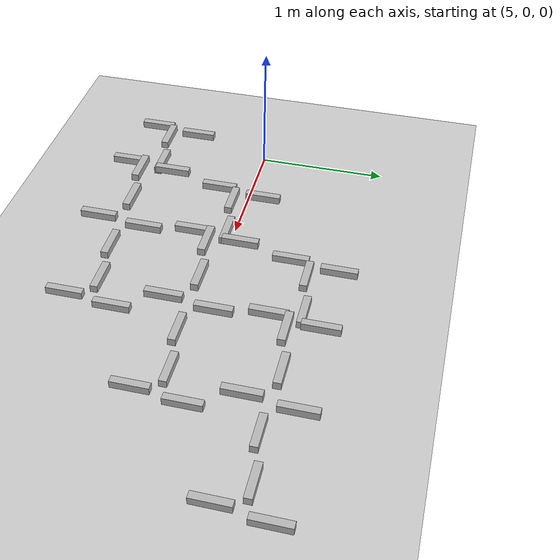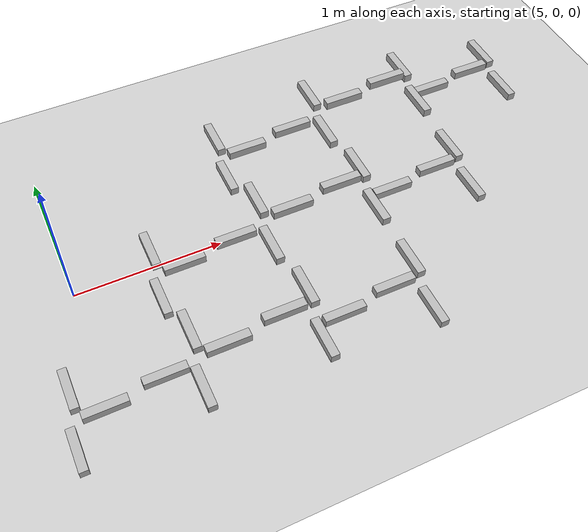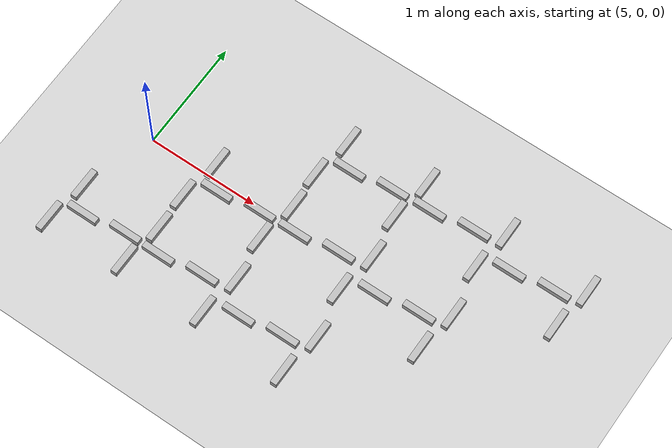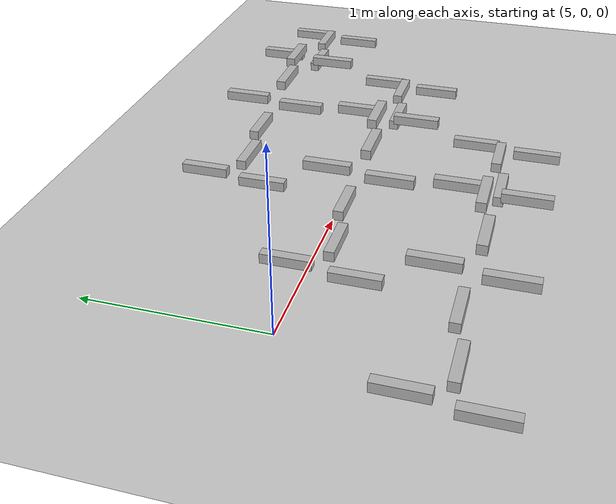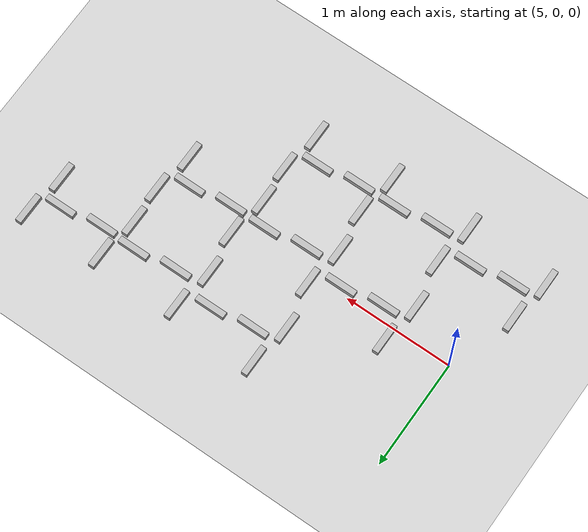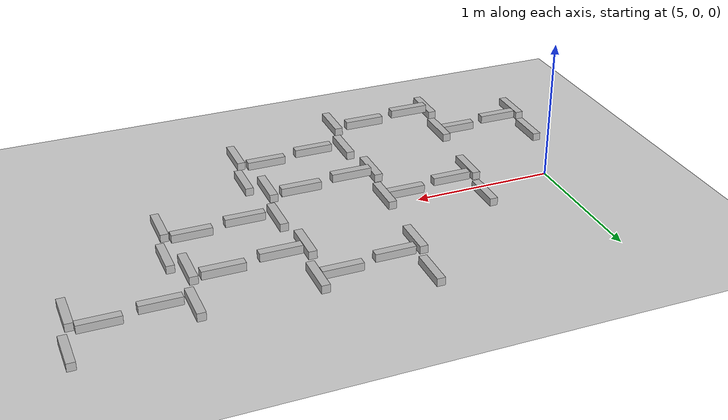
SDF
<sdf version="1.5">
 <world name="trials_task_2">
  <model name="ground_plane">
   <static>1</static>
   <link name="link">
    <collision name="collision">
     <geometry><plane><normal>0 0 1</normal><size>100 100</size></plane></geometry>
     <surface><friction><ode><mu>100</mu><mu2>50</mu2></ode></friction></surface>
    </collision>
    <visual name="visual">
     <cast_shadows>0</cast_shadows>
     <geometry><plane><normal>0 0 1</normal><size>100 100</size></plane></geometry>
     <material>
      <script><uri>file://media/materials/scripts/gazebo.material</uri><name>Gazebo/Grey</name></script>
     </material>
    </visual>
    <velocity_decay><linear>0</linear><angular>0</angular></velocity_decay>
   </link>
  </model>
  <model name="angle_block_base_1">
   <pose>4.38 -1.212 -0.142 0 -0 0</pose>
   <link name="block_0_0">
    <pose>0.19 0.19 0.092075 0 -0 0</pose>
    <inertial>
     <pose>0.16152 0 0.0745178 0 -0 1.5708</pose>
     <mass>20</mass>
     <inertia>
      <ixx>0.010815</ixx>
      <ixy>0</ixy>
      <iyy>0.136074</iyy>
      <ixz>0</ixz>
      <iyz>0</iyz>
      <izz>0.136074</izz>
     </inertia>
    </inertial>
    <visual name="visual">
     <pose>0.16152 0 0.0745178 0 -0 1.5708</pose>
     <geometry><box><size>0.28 0.0569606 0.0569606</size></box></geometry>
    </visual>
    <collision name="block_collision">
     <pose>0.16152 0 0.0745178 0 -0 1.5708</pose>
     <geometry><box><size>0.28 0.056961 0.056961</size></box></geometry>
     <surface>
      <contact><ode><max_vel>0.1</max_vel><min_depth>0.001</min_depth></ode></contact>
      <friction><ode><mu>1</mu><mu2>1</mu2></ode></friction>
     </surface>
    </collision>
    <velocity_decay><linear>0</linear><angular>0</angular></velocity_decay>
   </link>
   <link name="block_0_1">
    <pose>0.57 0.57 0.092075 0 -0 0</pose>
    <inertial>
     <pose>-0.16152 0 0.0745178 0 -0 1.5708</pose>
     <mass>20</mass>
     <inertia>
      <ixx>0.010815</ixx>
      <ixy>0</ixy>
      <iyy>0.136074</iyy>
      <ixz>0</ixz>
      <iyz>0</iyz>
      <izz>0.136074</izz>
     </inertia>
    </inertial>
    <visual name="visual">
     <pose>-0.16152 0 0.0745178 0 -0 1.5708</pose>
     <geometry><box><size>0.28 0.0569606 0.0569606</size></box></geometry>
    </visual>
    <collision name="block_collision">
     <pose>-0.16152 0 0.0745178 0 -0 1.5708</pose>
     <geometry><box><size>0.28 0.056961 0.056961</size></box></geometry>
     <surface>
      <contact><ode><max_vel>0.1</max_vel><min_depth>0.001</min_depth></ode></contact>
      <friction><ode><mu>1</mu><mu2>1</mu2></ode></friction>
     </surface>
    </collision>
    <velocity_decay><linear>0</linear><angular>0</angular></velocity_decay>
   </link>
   <link name="block_0_2">
    <pose>0.95 0.95 0.092075 0 -0 0</pose>
    <inertial>
     <pose>0.16152 0 0.0745178 0 -0 1.5708</pose>
     <mass>20</mass>
     <inertia>
      <ixx>0.010815</ixx>
      <ixy>0</ixy>
      <iyy>0.136074</iyy>
      <ixz>0</ixz>
      <iyz>0</iyz>
      <izz>0.136074</izz>
     </inertia>
    </inertial>
    <visual name="visual">
     <pose>0.16152 0 0.0745178 0 -0 1.5708</pose>
     <geometry><box><size>0.28 0.0569606 0.0569606</size></box></geometry>
    </visual>
    <collision name="block_collision">
     <pose>0.16152 0 0.0745178 0 -0 1.5708</pose>
     <geometry><box><size>0.28 0.056961 0.056961</size></box></geometry>
     <surface>
      <contact><ode><max_vel>0.1</max_vel><min_depth>0.001</min_depth></ode></contact>
      <friction><ode><mu>1</mu><mu2>1</mu2></ode></friction>
     </surface>
    </collision>
    <velocity_decay><linear>0</linear><angular>0</angular></velocity_decay>
   </link>
   <link name="block_0_3">
    <pose>1.33 1.33 0.092075 0 -0 0</pose>
    <inertial>
     <pose>-0.16152 0 0.0745178 0 -0 1.5708</pose>
     <mass>20</mass>
     <inertia>
      <ixx>0.010815</ixx>
      <ixy>0</ixy>
      <iyy>0.136074</iyy>
      <ixz>0</ixz>
      <iyz>0</iyz>
      <izz>0.136074</izz>
     </inertia>
    </inertial>
    <visual name="visual">
     <pose>-0.16152 0 0.0745178 0 -0 1.5708</pose>
     <geometry><box><size>0.28 0.0569606 0.0569606</size></box></geometry>
    </visual>
    <collision name="block_collision">
     <pose>-0.16152 0 0.0745178 0 -0 1.5708</pose>
     <geometry><box><size>0.28 0.056961 0.056961</size></box></geometry>
     <surface>
      <contact><ode><max_vel>0.1</max_vel><min_depth>0.001</min_depth></ode></contact>
      <friction><ode><mu>1</mu><mu2>1</mu2></ode></friction>
     </surface>
    </collision>
    <velocity_decay><linear>0</linear><angular>0</angular></velocity_decay>
   </link>
   <link name="block_0_4">
    <pose>1.71 1.71 0.092075 0 -0 0</pose>
    <inertial>
     <pose>0.16152 0 0.0745178 0 -0 1.5708</pose>
     <mass>20</mass>
     <inertia>
      <ixx>0.010815</ixx>
      <ixy>0</ixy>
      <iyy>0.136074</iyy>
      <ixz>0</ixz>
      <iyz>0</iyz>
      <izz>0.136074</izz>
     </inertia>
    </inertial>
    <visual name="visual">
     <pose>0.16152 0 0.0745178 0 -0 1.5708</pose>
     <geometry><box><size>0.28 0.0569606 0.0569606</size></box></geometry>
    </visual>
    <collision name="block_collision">
     <pose>0.16152 0 0.0745178 0 -0 1.5708</pose>
     <geometry><box><size>0.28 0.056961 0.056961</size></box></geometry>
     <surface>
      <contact><ode><max_vel>0.1</max_vel><min_depth>0.001</min_depth></ode></contact>
      <friction><ode><mu>1</mu><mu2>1</mu2></ode></friction>
     </surface>
    </collision>
    <velocity_decay><linear>0</linear><angular>0</angular></velocity_decay>
   </link>
   <link name="block_0_5">
    <pose>2.09 2.09 0.092075 0 -0 0</pose>
    <inertial>
     <pose>-0.16152 0 0.0745178 0 -0 1.5708</pose>
     <mass>20</mass>
     <inertia>
      <ixx>0.010815</ixx>
      <ixy>0</ixy>
      <iyy>0.136074</iyy>
      <ixz>0</ixz>
      <iyz>0</iyz>
      <izz>0.136074</izz>
     </inertia>
    </inertial>
    <visual name="visual">
     <pose>-0.16152 0 0.0745178 0 -0 1.5708</pose>
     <geometry><box><size>0.28 0.0569606 0.0569606</size></box></geometry>
    </visual>
    <collision name="block_collision">
     <pose>-0.16152 0 0.0745178 0 -0 1.5708</pose>
     <geometry><box><size>0.28 0.056961 0.056961</size></box></geometry>
     <surface>
      <contact><ode><max_vel>0.1</max_vel><min_depth>0.001</min_depth></ode></contact>
      <friction><ode><mu>1</mu><mu2>1</mu2></ode></friction>
     </surface>
    </collision>
    <velocity_decay><linear>0</linear><angular>0</angular></velocity_decay>
   </link>
   <link name="block_1_0">
    <pose>0.57 0.19 0.138112 0 -0 0</pose>
    <inertial>
     <pose>0 0.16152 0.0745178 0 -0 0</pose>
     <mass>20</mass>
     <inertia>
      <ixx>0.010815</ixx>
      <ixy>0</ixy>
      <iyy>0.136074</iyy>
      <ixz>0</ixz>
      <iyz>0</iyz>
      <izz>0.136074</izz>
     </inertia>
    </inertial>
    <visual name="visual">
     <pose>0 0.16152 0.0745178 0 -0 0</pose>
     <geometry><box><size>0.28 0.0569606 0.0569606</size></box></geometry>
    </visual>
    <collision name="block_collision">
     <pose>0 0.16152 0.0745178 0 -0 0</pose>
     <geometry><box><size>0.28 0.056961 0.056961</size></box></geometry>
     <surface>
      <contact><ode><max_vel>0.1</max_vel><min_depth>0.001</min_depth></ode></contact>
      <friction><ode><mu>1</mu><mu2>1</mu2></ode></friction>
     </surface>
    </collision>
    <velocity_decay><linear>0</linear><angular>0</angular></velocity_decay>
   </link>
   <link name="block_1_1">
    <pose>0.95 0.57 0.138112 0 -0 0</pose>
    <inertial>
     <pose>0 -0.16152 0.0745178 0 -0 0</pose>
     <mass>20</mass>
     <inertia>
      <ixx>0.010815</ixx>
      <ixy>0</ixy>
      <iyy>0.136074</iyy>
      <ixz>0</ixz>
      <iyz>0</iyz>
      <izz>0.136074</izz>
     </inertia>
    </inertial>
    <visual name="visual">
     <pose>0 -0.16152 0.0745178 0 -0 0</pose>
     <geometry><box><size>0.28 0.0569606 0.0569606</size></box></geometry>
    </visual>
    <collision name="block_collision">
     <pose>0 -0.16152 0.0745178 0 -0 0</pose>
     <geometry><box><size>0.28 0.056961 0.056961</size></box></geometry>
     <surface>
      <contact><ode><max_vel>0.1</max_vel><min_depth>0.001</min_depth></ode></contact>
      <friction><ode><mu>1</mu><mu2>1</mu2></ode></friction>
     </surface>
    </collision>
    <velocity_decay><linear>0</linear><angular>0</angular></velocity_decay>
   </link>
   <link name="block_1_2">
    <pose>1.33 0.95 0.138112 0 -0 0</pose>
    <inertial>
     <pose>0 0.16152 0.0745178 0 -0 0</pose>
     <mass>20</mass>
     <inertia>
      <ixx>0.010815</ixx>
      <ixy>0</ixy>
      <iyy>0.136074</iyy>
      <ixz>0</ixz>
      <iyz>0</iyz>
      <izz>0.136074</izz>
     </inertia>
    </inertial>
    <visual name="visual">
     <pose>0 0.16152 0.0745178 0 -0 0</pose>
     <geometry><box><size>0.28 0.0569606 0.0569606</size></box></geometry>
    </visual>
    <collision name="block_collision">
     <pose>0 0.16152 0.0745178 0 -0 0</pose>
     <geometry><box><size>0.28 0.056961 0.056961</size></box></geometry>
     <surface>
      <contact><ode><max_vel>0.1</max_vel><min_depth>0.001</min_depth></ode></contact>
      <friction><ode><mu>1</mu><mu2>1</mu2></ode></friction>
     </surface>
    </collision>
    <velocity_decay><linear>0</linear><angular>0</angular></velocity_decay>
   </link>
   <link name="block_1_3">
    <pose>1.71 1.33 0.138112 0 -0 0</pose>
    <inertial>
     <pose>0 -0.16152 0.0745178 0 -0 0</pose>
     <mass>20</mass>
     <inertia>
      <ixx>0.010815</ixx>
      <ixy>0</ixy>
      <iyy>0.136074</iyy>
      <ixz>0</ixz>
      <iyz>0</iyz>
      <izz>0.136074</izz>
     </inertia>
    </inertial>
    <visual name="visual">
     <pose>0 -0.16152 0.0745178 0 -0 0</pose>
     <geometry><box><size>0.28 0.0569606 0.0569606</size></box></geometry>
    </visual>
    <collision name="block_collision">
     <pose>0 -0.16152 0.0745178 0 -0 0</pose>
     <geometry><box><size>0.28 0.056961 0.056961</size></box></geometry>
     <surface>
      <contact><ode><max_vel>0.1</max_vel><min_depth>0.001</min_depth></ode></contact>
      <friction><ode><mu>1</mu><mu2>1</mu2></ode></friction>
     </surface>
    </collision>
    <velocity_decay><linear>0</linear><angular>0</angular></velocity_decay>
   </link>
   <link name="block_1_4">
    <pose>2.09 1.71 0.138112 0 -0 0</pose>
    <inertial>
     <pose>0 0.16152 0.0745178 0 -0 0</pose>
     <mass>20</mass>
     <inertia>
      <ixx>0.010815</ixx>
      <ixy>0</ixy>
      <iyy>0.136074</iyy>
      <ixz>0</ixz>
      <iyz>0</iyz>
      <izz>0.136074</izz>
     </inertia>
    </inertial>
    <visual name="visual">
     <pose>0 0.16152 0.0745178 0 -0 0</pose>
     <geometry><box><size>0.28 0.0569606 0.0569606</size></box></geometry>
    </visual>
    <collision name="block_collision">
     <pose>0 0.16152 0.0745178 0 -0 0</pose>
     <geometry><box><size>0.28 0.056961 0.056961</size></box></geometry>
     <surface>
      <contact><ode><max_vel>0.1</max_vel><min_depth>0.001</min_depth></ode></contact>
      <friction><ode><mu>1</mu><mu2>1</mu2></ode></friction>
     </surface>
    </collision>
    <velocity_decay><linear>0</linear><angular>0</angular></velocity_decay>
   </link>
   <link name="block_1_5">
    <pose>2.47 2.09 0.138112 0 -0 0</pose>
    <inertial>
     <pose>0 -0.16152 0.0745178 0 -0 0</pose>
     <mass>20</mass>
     <inertia>
      <ixx>0.010815</ixx>
      <ixy>0</ixy>
      <iyy>0.136074</iyy>
      <ixz>0</ixz>
      <iyz>0</iyz>
      <izz>0.136074</izz>
     </inertia>
    </inertial>
    <visual name="visual">
     <pose>0 -0.16152 0.0745178 0 -0 0</pose>
     <geometry><box><size>0.28 0.0569606 0.0569606</size></box></geometry>
    </visual>
    <collision name="block_collision">
     <pose>0 -0.16152 0.0745178 0 -0 0</pose>
     <geometry><box><size>0.28 0.056961 0.056961</size></box></geometry>
     <surface>
      <contact><ode><max_vel>0.1</max_vel><min_depth>0.001</min_depth></ode></contact>
      <friction><ode><mu>1</mu><mu2>1</mu2></ode></friction>
     </surface>
    </collision>
    <velocity_decay><linear>0</linear><angular>0</angular></velocity_decay>
   </link>
   <link name="block_2_0">
    <pose>0.95 0.19 0.230188 0 -0 0</pose>
    <inertial>
     <pose>0.16152 0 0.0745178 0 -0 1.5708</pose>
     <mass>20</mass>
     <inertia>
      <ixx>0.010815</ixx>
      <ixy>0</ixy>
      <iyy>0.136074</iyy>
      <ixz>0</ixz>
      <iyz>0</iyz>
      <izz>0.136074</izz>
     </inertia>
    </inertial>
    <visual name="visual">
     <pose>0.16152 0 0.0745178 0 -0 1.5708</pose>
     <geometry><box><size>0.28 0.0569606 0.0569606</size></box></geometry>
    </visual>
    <collision name="block_collision">
     <pose>0.16152 0 0.0745178 0 -0 1.5708</pose>
     <geometry><box><size>0.28 0.056961 0.056961</size></box></geometry>
     <surface>
      <contact><ode><max_vel>0.1</max_vel><min_depth>0.001</min_depth></ode></contact>
      <friction><ode><mu>1</mu><mu2>1</mu2></ode></friction>
     </surface>
    </collision>
    <velocity_decay><linear>0</linear><angular>0</angular></velocity_decay>
   </link>
   <link name="block_2_1">
    <pose>1.33 0.57 0.230188 0 -0 0</pose>
    <inertial>
     <pose>-0.16152 0 0.0745178 0 -0 1.5708</pose>
     <mass>20</mass>
     <inertia>
      <ixx>0.010815</ixx>
      <ixy>0</ixy>
      <iyy>0.136074</iyy>
      <ixz>0</ixz>
      <iyz>0</iyz>
      <izz>0.136074</izz>
     </inertia>
    </inertial>
    <visual name="visual">
     <pose>-0.16152 0 0.0745178 0 -0 1.5708</pose>
     <geometry><box><size>0.28 0.0569606 0.0569606</size></box></geometry>
    </visual>
    <collision name="block_collision">
     <pose>-0.16152 0 0.0745178 0 -0 1.5708</pose>
     <geometry><box><size>0.28 0.056961 0.056961</size></box></geometry>
     <surface>
      <contact><ode><max_vel>0.1</max_vel><min_depth>0.001</min_depth></ode></contact>
      <friction><ode><mu>1</mu><mu2>1</mu2></ode></friction>
     </surface>
    </collision>
    <velocity_decay><linear>0</linear><angular>0</angular></velocity_decay>
   </link>
   <link name="block_2_2">
    <pose>1.71 0.95 0.230188 0 -0 0</pose>
    <inertial>
     <pose>0.16152 0 0.0745178 0 -0 1.5708</pose>
     <mass>20</mass>
     <inertia>
      <ixx>0.010815</ixx>
      <ixy>0</ixy>
      <iyy>0.136074</iyy>
      <ixz>0</ixz>
      <iyz>0</iyz>
      <izz>0.136074</izz>
     </inertia>
    </inertial>
    <visual name="visual">
     <pose>0.16152 0 0.0745178 0 -0 1.5708</pose>
     <geometry><box><size>0.28 0.0569606 0.0569606</size></box></geometry>
    </visual>
    <collision name="block_collision">
     <pose>0.16152 0 0.0745178 0 -0 1.5708</pose>
     <geometry><box><size>0.28 0.056961 0.056961</size></box></geometry>
     <surface>
      <contact><ode><max_vel>0.1</max_vel><min_depth>0.001</min_depth></ode></contact>
      <friction><ode><mu>1</mu><mu2>1</mu2></ode></friction>
     </surface>
    </collision>
    <velocity_decay><linear>0</linear><angular>0</angular></velocity_decay>
   </link>
   <link name="block_2_3">
    <pose>2.09 1.33 0.230188 0 -0 0</pose>
    <inertial>
     <pose>-0.16152 0 0.0745178 0 -0 1.5708</pose>
     <mass>20</mass>
     <inertia>
      <ixx>0.010815</ixx>
      <ixy>0</ixy>
      <iyy>0.136074</iyy>
      <ixz>0</ixz>
      <iyz>0</iyz>
      <izz>0.136074</izz>
     </inertia>
    </inertial>
    <visual name="visual">
     <pose>-0.16152 0 0.0745178 0 -0 1.5708</pose>
     <geometry><box><size>0.28 0.0569606 0.0569606</size></box></geometry>
    </visual>
    <collision name="block_collision">
     <pose>-0.16152 0 0.0745178 0 -0 1.5708</pose>
     <geometry><box><size>0.28 0.056961 0.056961</size></box></geometry>
     <surface>
      <contact><ode><max_vel>0.1</max_vel><min_depth>0.001</min_depth></ode></contact>
      <friction><ode><mu>1</mu><mu2>1</mu2></ode></friction>
     </surface>
    </collision>
    <velocity_decay><linear>0</linear><angular>0</angular></velocity_decay>
   </link>
   <link name="block_2_4">
    <pose>2.47 1.71 0.230188 0 -0 0</pose>
    <inertial>
     <pose>0.16152 0 0.0745178 0 -0 1.5708</pose>
     <mass>20</mass>
     <inertia>
      <ixx>0.010815</ixx>
      <ixy>0</ixy>
      <iyy>0.136074</iyy>
      <ixz>0</ixz>
      <iyz>0</iyz>
      <izz>0.136074</izz>
     </inertia>
    </inertial>
    <visual name="visual">
     <pose>0.16152 0 0.0745178 0 -0 1.5708</pose>
     <geometry><box><size>0.28 0.0569606 0.0569606</size></box></geometry>
    </visual>
    <collision name="block_collision">
     <pose>0.16152 0 0.0745178 0 -0 1.5708</pose>
     <geometry><box><size>0.28 0.056961 0.056961</size></box></geometry>
     <surface>
      <contact><ode><max_vel>0.1</max_vel><min_depth>0.001</min_depth></ode></contact>
      <friction><ode><mu>1</mu><mu2>1</mu2></ode></friction>
     </surface>
    </collision>
    <velocity_decay><linear>0</linear><angular>0</angular></velocity_decay>
   </link>
   <link name="block_2_5">
    <pose>2.85 2.09 0.230188 0 -0 0</pose>
    <inertial>
     <pose>-0.16152 0 0.0745178 0 -0 1.5708</pose>
     <mass>20</mass>
     <inertia>
      <ixx>0.010815</ixx>
      <ixy>0</ixy>
      <iyy>0.136074</iyy>
      <ixz>0</ixz>
      <iyz>0</iyz>
      <izz>0.136074</izz>
     </inertia>
    </inertial>
    <visual name="visual">
     <pose>-0.16152 0 0.0745178 0 -0 1.5708</pose>
     <geometry><box><size>0.28 0.0569606 0.0569606</size></box></geometry>
    </visual>
    <collision name="block_collision">
     <pose>-0.16152 0 0.0745178 0 -0 1.5708</pose>
     <geometry><box><size>0.28 0.056961 0.056961</size></box></geometry>
     <surface>
      <contact><ode><max_vel>0.1</max_vel><min_depth>0.001</min_depth></ode></contact>
      <friction><ode><mu>1</mu><mu2>1</mu2></ode></friction>
     </surface>
    </collision>
    <velocity_decay><linear>0</linear><angular>0</angular></velocity_decay>
   </link>
   <link name="block_3_0">
    <pose>1.33 0.19 0.322263 0 -0 0</pose>
    <inertial>
     <pose>0 0.16152 0.0745178 0 -0 0</pose>
     <mass>20</mass>
     <inertia>
      <ixx>0.010815</ixx>
      <ixy>0</ixy>
      <iyy>0.136074</iyy>
      <ixz>0</ixz>
      <iyz>0</iyz>
      <izz>0.136074</izz>
     </inertia>
    </inertial>
    <visual name="visual">
     <pose>0 0.16152 0.0745178 0 -0 0</pose>
     <geometry><box><size>0.28 0.0569606 0.0569606</size></box></geometry>
    </visual>
    <collision name="block_collision">
     <pose>0 0.16152 0.0745178 0 -0 0</pose>
     <geometry><box><size>0.28 0.056961 0.056961</size></box></geometry>
     <surface>
      <contact><ode><max_vel>0.1</max_vel><min_depth>0.001</min_depth></ode></contact>
      <friction><ode><mu>1</mu><mu2>1</mu2></ode></friction>
     </surface>
    </collision>
    <velocity_decay><linear>0</linear><angular>0</angular></velocity_decay>
   </link>
   <link name="block_3_1">
    <pose>1.71 0.57 0.322263 0 -0 0</pose>
    <inertial>
     <pose>0 -0.16152 0.0745178 0 -0 0</pose>
     <mass>20</mass>
     <inertia>
      <ixx>0.010815</ixx>
      <ixy>0</ixy>
      <iyy>0.136074</iyy>
      <ixz>0</ixz>
      <iyz>0</iyz>
      <izz>0.136074</izz>
     </inertia>
    </inertial>
    <visual name="visual">
     <pose>0 -0.16152 0.0745178 0 -0 0</pose>
     <geometry><box><size>0.28 0.0569606 0.0569606</size></box></geometry>
    </visual>
    <collision name="block_collision">
     <pose>0 -0.16152 0.0745178 0 -0 0</pose>
     <geometry><box><size>0.28 0.056961 0.056961</size></box></geometry>
     <surface>
      <contact><ode><max_vel>0.1</max_vel><min_depth>0.001</min_depth></ode></contact>
      <friction><ode><mu>1</mu><mu2>1</mu2></ode></friction>
     </surface>
    </collision>
    <velocity_decay><linear>0</linear><angular>0</angular></velocity_decay>
   </link>
   <link name="block_3_2">
    <pose>2.09 0.95 0.322263 0 -0 0</pose>
    <inertial>
     <pose>0 0.16152 0.0745178 0 -0 0</pose>
     <mass>20</mass>
     <inertia>
      <ixx>0.010815</ixx>
      <ixy>0</ixy>
      <iyy>0.136074</iyy>
      <ixz>0</ixz>
      <iyz>0</iyz>
      <izz>0.136074</izz>
     </inertia>
    </inertial>
    <visual name="visual">
     <pose>0 0.16152 0.0745178 0 -0 0</pose>
     <geometry><box><size>0.28 0.0569606 0.0569606</size></box></geometry>
    </visual>
    <collision name="block_collision">
     <pose>0 0.16152 0.0745178 0 -0 0</pose>
     <geometry><box><size>0.28 0.056961 0.056961</size></box></geometry>
     <surface>
      <contact><ode><max_vel>0.1</max_vel><min_depth>0.001</min_depth></ode></contact>
      <friction><ode><mu>1</mu><mu2>1</mu2></ode></friction>
     </surface>
    </collision>
    <velocity_decay><linear>0</linear><angular>0</angular></velocity_decay>
   </link>
   <link name="block_3_3">
    <pose>2.47 1.33 0.322263 0 -0 0</pose>
    <inertial>
     <pose>0 -0.16152 0.0745178 0 -0 0</pose>
     <mass>20</mass>
     <inertia>
      <ixx>0.010815</ixx>
      <ixy>0</ixy>
      <iyy>0.136074</iyy>
      <ixz>0</ixz>
      <iyz>0</iyz>
      <izz>0.136074</izz>
     </inertia>
    </inertial>
    <visual name="visual">
     <pose>0 -0.16152 0.0745178 0 -0 0</pose>
     <geometry><box><size>0.28 0.0569606 0.0569606</size></box></geometry>
    </visual>
    <collision name="block_collision">
     <pose>0 -0.16152 0.0745178 0 -0 0</pose>
     <geometry><box><size>0.28 0.056961 0.056961</size></box></geometry>
     <surface>
      <contact><ode><max_vel>0.1</max_vel><min_depth>0.001</min_depth></ode></contact>
      <friction><ode><mu>1</mu><mu2>1</mu2></ode></friction>
     </surface>
    </collision>
    <velocity_decay><linear>0</linear><angular>0</angular></velocity_decay>
   </link>
   <link name="block_3_4">
    <pose>2.85 1.71 0.322263 0 -0 0</pose>
    <inertial>
     <pose>0 0.16152 0.0745178 0 -0 0</pose>
     <mass>20</mass>
     <inertia>
      <ixx>0.010815</ixx>
      <ixy>0</ixy>
      <iyy>0.136074</iyy>
      <ixz>0</ixz>
      <iyz>0</iyz>
      <izz>0.136074</izz>
     </inertia>
    </inertial>
    <visual name="visual">
     <pose>0 0.16152 0.0745178 0 -0 0</pose>
     <geometry><box><size>0.28 0.0569606 0.0569606</size></box></geometry>
    </visual>
    <collision name="block_collision">
     <pose>0 0.16152 0.0745178 0 -0 0</pose>
     <geometry><box><size>0.28 0.056961 0.056961</size></box></geometry>
     <surface>
      <contact><ode><max_vel>0.1</max_vel><min_depth>0.001</min_depth></ode></contact>
      <friction><ode><mu>1</mu><mu2>1</mu2></ode></friction>
     </surface>
    </collision>
    <velocity_decay><linear>0</linear><angular>0</angular></velocity_decay>
   </link>
   <link name="block_3_5">
    <pose>3.23 2.09 0.322263 0 -0 0</pose>
    <inertial>
     <pose>0 -0.16152 0.0745178 0 -0 0</pose>
     <mass>20</mass>
     <inertia>
      <ixx>0.010815</ixx>
      <ixy>0</ixy>
      <iyy>0.136074</iyy>
      <ixz>0</ixz>
      <iyz>0</iyz>
      <izz>0.136074</izz>
     </inertia>
    </inertial>
    <visual name="visual">
     <pose>0 -0.16152 0.0745178 0 -0 0</pose>
     <geometry><box><size>0.28 0.0569606 0.0569606</size></box></geometry>
    </visual>
    <collision name="block_collision">
     <pose>0 -0.16152 0.0745178 0 -0 0</pose>
     <geometry><box><size>0.28 0.056961 0.056961</size></box></geometry>
     <surface>
      <contact><ode><max_vel>0.1</max_vel><min_depth>0.001</min_depth></ode></contact>
      <friction><ode><mu>1</mu><mu2>1</mu2></ode></friction>
     </surface>
    </collision>
    <velocity_decay><linear>0</linear><angular>0</angular></velocity_decay>
   </link>
   <link name="block_4_0">
    <pose>1.71 0.19 0.230188 0 -0 0</pose>
    <inertial>
     <pose>0.16152 0 0.0745178 0 -0 1.5708</pose>
     <mass>20</mass>
     <inertia>
      <ixx>0.010815</ixx>
      <ixy>0</ixy>
      <iyy>0.136074</iyy>
      <ixz>0</ixz>
      <iyz>0</iyz>
      <izz>0.136074</izz>
     </inertia>
    </inertial>
    <visual name="visual">
     <pose>0.16152 0 0.0745178 0 -0 1.5708</pose>
     <geometry><box><size>0.28 0.0569606 0.0569606</size></box></geometry>
    </visual>
    <collision name="block_collision">
     <pose>0.16152 0 0.0745178 0 -0 1.5708</pose>
     <geometry><box><size>0.28 0.056961 0.056961</size></box></geometry>
     <surface>
      <contact><ode><max_vel>0.1</max_vel><min_depth>0.001</min_depth></ode></contact>
      <friction><ode><mu>1</mu><mu2>1</mu2></ode></friction>
     </surface>
    </collision>
    <velocity_decay><linear>0</linear><angular>0</angular></velocity_decay>
   </link>
   <link name="block_4_1">
    <pose>2.09 0.57 0.230188 0 -0 0</pose>
    <inertial>
     <pose>-0.16152 0 0.0745178 0 -0 1.5708</pose>
     <mass>20</mass>
     <inertia>
      <ixx>0.010815</ixx>
      <ixy>0</ixy>
      <iyy>0.136074</iyy>
      <ixz>0</ixz>
      <iyz>0</iyz>
      <izz>0.136074</izz>
     </inertia>
    </inertial>
    <visual name="visual">
     <pose>-0.16152 0 0.0745178 0 -0 1.5708</pose>
     <geometry><box><size>0.28 0.0569606 0.0569606</size></box></geometry>
    </visual>
    <collision name="block_collision">
     <pose>-0.16152 0 0.0745178 0 -0 1.5708</pose>
     <geometry><box><size>0.28 0.056961 0.056961</size></box></geometry>
     <surface>
      <contact><ode><max_vel>0.1</max_vel><min_depth>0.001</min_depth></ode></contact>
      <friction><ode><mu>1</mu><mu2>1</mu2></ode></friction>
     </surface>
    </collision>
    <velocity_decay><linear>0</linear><angular>0</angular></velocity_decay>
   </link>
   <link name="block_4_2">
    <pose>2.47 0.95 0.230188 0 -0 0</pose>
    <inertial>
     <pose>0.16152 0 0.0745178 0 -0 1.5708</pose>
     <mass>20</mass>
     <inertia>
      <ixx>0.010815</ixx>
      <ixy>0</ixy>
      <iyy>0.136074</iyy>
      <ixz>0</ixz>
      <iyz>0</iyz>
      <izz>0.136074</izz>
     </inertia>
    </inertial>
    <visual name="visual">
     <pose>0.16152 0 0.0745178 0 -0 1.5708</pose>
     <geometry><box><size>0.28 0.0569606 0.0569606</size></box></geometry>
    </visual>
    <collision name="block_collision">
     <pose>0.16152 0 0.0745178 0 -0 1.5708</pose>
     <geometry><box><size>0.28 0.056961 0.056961</size></box></geometry>
     <surface>
      <contact><ode><max_vel>0.1</max_vel><min_depth>0.001</min_depth></ode></contact>
      <friction><ode><mu>1</mu><mu2>1</mu2></ode></friction>
     </surface>
    </collision>
    <velocity_decay><linear>0</linear><angular>0</angular></velocity_decay>
   </link>
   <link name="block_4_3">
    <pose>2.85 1.33 0.230188 0 -0 0</pose>
    <inertial>
     <pose>-0.16152 0 0.0745178 0 -0 1.5708</pose>
     <mass>20</mass>
     <inertia>
      <ixx>0.010815</ixx>
      <ixy>0</ixy>
      <iyy>0.136074</iyy>
      <ixz>0</ixz>
      <iyz>0</iyz>
      <izz>0.136074</izz>
     </inertia>
    </inertial>
    <visual name="visual">
     <pose>-0.16152 0 0.0745178 0 -0 1.5708</pose>
     <geometry><box><size>0.28 0.0569606 0.0569606</size></box></geometry>
    </visual>
    <collision name="block_collision">
     <pose>-0.16152 0 0.0745178 0 -0 1.5708</pose>
     <geometry><box><size>0.28 0.056961 0.056961</size></box></geometry>
     <surface>
      <contact><ode><max_vel>0.1</max_vel><min_depth>0.001</min_depth></ode></contact>
      <friction><ode><mu>1</mu><mu2>1</mu2></ode></friction>
     </surface>
    </collision>
    <velocity_decay><linear>0</linear><angular>0</angular></velocity_decay>
   </link>
   <link name="block_4_4">
    <pose>3.23 1.71 0.230188 0 -0 0</pose>
    <inertial>
     <pose>0.16152 0 0.0745178 0 -0 1.5708</pose>
     <mass>20</mass>
     <inertia>
      <ixx>0.010815</ixx>
      <ixy>0</ixy>
      <iyy>0.136074</iyy>
      <ixz>0</ixz>
      <iyz>0</iyz>
      <izz>0.136074</izz>
     </inertia>
    </inertial>
    <visual name="visual">
     <pose>0.16152 0 0.0745178 0 -0 1.5708</pose>
     <geometry><box><size>0.28 0.0569606 0.0569606</size></box></geometry>
    </visual>
    <collision name="block_collision">
     <pose>0.16152 0 0.0745178 0 -0 1.5708</pose>
     <geometry><box><size>0.28 0.056961 0.056961</size></box></geometry>
     <surface>
      <contact><ode><max_vel>0.1</max_vel><min_depth>0.001</min_depth></ode></contact>
      <friction><ode><mu>1</mu><mu2>1</mu2></ode></friction>
     </surface>
    </collision>
    <velocity_decay><linear>0</linear><angular>0</angular></velocity_decay>
   </link>
   <link name="block_4_5">
    <pose>3.61 2.09 0.230188 0 -0 0</pose>
    <inertial>
     <pose>-0.16152 0 0.0745178 0 -0 1.5708</pose>
     <mass>20</mass>
     <inertia>
      <ixx>0.010815</ixx>
      <ixy>0</ixy>
      <iyy>0.136074</iyy>
      <ixz>0</ixz>
      <iyz>0</iyz>
      <izz>0.136074</izz>
     </inertia>
    </inertial>
    <visual name="visual">
     <pose>-0.16152 0 0.0745178 0 -0 1.5708</pose>
     <geometry><box><size>0.28 0.0569606 0.0569606</size></box></geometry>
    </visual>
    <collision name="block_collision">
     <pose>-0.16152 0 0.0745178 0 -0 1.5708</pose>
     <geometry><box><size>0.28 0.056961 0.056961</size></box></geometry>
     <surface>
      <contact><ode><max_vel>0.1</max_vel><min_depth>0.001</min_depth></ode></contact>
      <friction><ode><mu>1</mu><mu2>1</mu2></ode></friction>
     </surface>
    </collision>
    <velocity_decay><linear>0</linear><angular>0</angular></velocity_decay>
   </link>
   <link name="block_5_0">
    <pose>2.09 0.19 0.138112 0 -0 0</pose>
    <inertial>
     <pose>0 0.16152 0.0745178 0 -0 0</pose>
     <mass>20</mass>
     <inertia>
      <ixx>0.010815</ixx>
      <ixy>0</ixy>
      <iyy>0.136074</iyy>
      <ixz>0</ixz>
      <iyz>0</iyz>
      <izz>0.136074</izz>
     </inertia>
    </inertial>
    <visual name="visual">
     <pose>0 0.16152 0.0745178 0 -0 0</pose>
     <geometry><box><size>0.28 0.0569606 0.0569606</size></box></geometry>
    </visual>
    <collision name="block_collision">
     <pose>0 0.16152 0.0745178 0 -0 0</pose>
     <geometry><box><size>0.28 0.056961 0.056961</size></box></geometry>
     <surface>
      <contact><ode><max_vel>0.1</max_vel><min_depth>0.001</min_depth></ode></contact>
      <friction><ode><mu>1</mu><mu2>1</mu2></ode></friction>
     </surface>
    </collision>
    <velocity_decay><linear>0</linear><angular>0</angular></velocity_decay>
   </link>
   <link name="block_5_1">
    <pose>2.47 0.57 0.138112 0 -0 0</pose>
    <inertial>
     <pose>0 -0.16152 0.0745178 0 -0 0</pose>
     <mass>20</mass>
     <inertia>
      <ixx>0.010815</ixx>
      <ixy>0</ixy>
      <iyy>0.136074</iyy>
      <ixz>0</ixz>
      <iyz>0</iyz>
      <izz>0.136074</izz>
     </inertia>
    </inertial>
    <visual name="visual">
     <pose>0 -0.16152 0.0745178 0 -0 0</pose>
     <geometry><box><size>0.28 0.0569606 0.0569606</size></box></geometry>
    </visual>
    <collision name="block_collision">
     <pose>0 -0.16152 0.0745178 0 -0 0</pose>
     <geometry><box><size>0.28 0.056961 0.056961</size></box></geometry>
     <surface>
      <contact><ode><max_vel>0.1</max_vel><min_depth>0.001</min_depth></ode></contact>
      <friction><ode><mu>1</mu><mu2>1</mu2></ode></friction>
     </surface>
    </collision>
    <velocity_decay><linear>0</linear><angular>0</angular></velocity_decay>
   </link>
   <link name="block_5_2">
    <pose>2.85 0.95 0.138112 0 -0 0</pose>
    <inertial>
     <pose>0 0.16152 0.0745178 0 -0 0</pose>
     <mass>20</mass>
     <inertia>
      <ixx>0.010815</ixx>
      <ixy>0</ixy>
      <iyy>0.136074</iyy>
      <ixz>0</ixz>
      <iyz>0</iyz>
      <izz>0.136074</izz>
     </inertia>
    </inertial>
    <visual name="visual">
     <pose>0 0.16152 0.0745178 0 -0 0</pose>
     <geometry><box><size>0.28 0.0569606 0.0569606</size></box></geometry>
    </visual>
    <collision name="block_collision">
     <pose>0 0.16152 0.0745178 0 -0 0</pose>
     <geometry><box><size>0.28 0.056961 0.056961</size></box></geometry>
     <surface>
      <contact><ode><max_vel>0.1</max_vel><min_depth>0.001</min_depth></ode></contact>
      <friction><ode><mu>1</mu><mu2>1</mu2></ode></friction>
     </surface>
    </collision>
    <velocity_decay><linear>0</linear><angular>0</angular></velocity_decay>
   </link>
   <link name="block_5_3">
    <pose>3.23 1.33 0.138112 0 -0 0</pose>
    <inertial>
     <pose>0 -0.16152 0.0745178 0 -0 0</pose>
     <mass>20</mass>
     <inertia>
      <ixx>0.010815</ixx>
      <ixy>0</ixy>
      <iyy>0.136074</iyy>
      <ixz>0</ixz>
      <iyz>0</iyz>
      <izz>0.136074</izz>
     </inertia>
    </inertial>
    <visual name="visual">
     <pose>0 -0.16152 0.0745178 0 -0 0</pose>
     <geometry><box><size>0.28 0.0569606 0.0569606</size></box></geometry>
    </visual>
    <collision name="block_collision">
     <pose>0 -0.16152 0.0745178 0 -0 0</pose>
     <geometry><box><size>0.28 0.056961 0.056961</size></box></geometry>
     <surface>
      <contact><ode><max_vel>0.1</max_vel><min_depth>0.001</min_depth></ode></contact>
      <friction><ode><mu>1</mu><mu2>1</mu2></ode></friction>
     </surface>
    </collision>
    <velocity_decay><linear>0</linear><angular>0</angular></velocity_decay>
   </link>
   <link name="block_5_4">
    <pose>3.61 1.71 0.138112 0 -0 0</pose>
    <inertial>
     <pose>0 0.16152 0.0745178 0 -0 0</pose>
     <mass>20</mass>
     <inertia>
      <ixx>0.010815</ixx>
      <ixy>0</ixy>
      <iyy>0.136074</iyy>
      <ixz>0</ixz>
      <iyz>0</iyz>
      <izz>0.136074</izz>
     </inertia>
    </inertial>
    <visual name="visual">
     <pose>0 0.16152 0.0745178 0 -0 0</pose>
     <geometry><box><size>0.28 0.0569606 0.0569606</size></box></geometry>
    </visual>
    <collision name="block_collision">
     <pose>0 0.16152 0.0745178 0 -0 0</pose>
     <geometry><box><size>0.28 0.056961 0.056961</size></box></geometry>
     <surface>
      <contact><ode><max_vel>0.1</max_vel><min_depth>0.001</min_depth></ode></contact>
      <friction><ode><mu>1</mu><mu2>1</mu2></ode></friction>
     </surface>
    </collision>
    <velocity_decay><linear>0</linear><angular>0</angular></velocity_decay>
   </link>
   <link name="block_5_5">
    <pose>3.99 2.09 0.138112 0 -0 0</pose>
    <inertial>
     <pose>0 -0.16152 0.0745178 0 -0 0</pose>
     <mass>20</mass>
     <inertia>
      <ixx>0.010815</ixx>
      <ixy>0</ixy>
      <iyy>0.136074</iyy>
      <ixz>0</ixz>
      <iyz>0</iyz>
      <izz>0.136074</izz>
     </inertia>
    </inertial>
    <visual name="visual">
     <pose>0 -0.16152 0.0745178 0 -0 0</pose>
     <geometry><box><size>0.28 0.0569606 0.0569606</size></box></geometry>
    </visual>
    <collision name="block_collision">
     <pose>0 -0.16152 0.0745178 0 -0 0</pose>
     <geometry><box><size>0.28 0.056961 0.056961</size></box></geometry>
     <surface>
      <contact><ode><max_vel>0.1</max_vel><min_depth>0.001</min_depth></ode></contact>
      <friction><ode><mu>1</mu><mu2>1</mu2></ode></friction>
     </surface>
    </collision>
    <velocity_decay><linear>0</linear><angular>0</angular></velocity_decay>
   </link>
   <link name="block_6_0">
    <pose>2.47 0.19 0.092075 0 -0 0</pose>
    <inertial>
     <pose>0.16152 0 0.0745178 0 -0 1.5708</pose>
     <mass>20</mass>
     <inertia>
      <ixx>0.010815</ixx>
      <ixy>0</ixy>
      <iyy>0.136074</iyy>
      <ixz>0</ixz>
      <iyz>0</iyz>
      <izz>0.136074</izz>
     </inertia>
    </inertial>
    <visual name="visual">
     <pose>0.16152 0 0.0745178 0 -0 1.5708</pose>
     <geometry><box><size>0.28 0.0569606 0.0569606</size></box></geometry>
    </visual>
    <collision name="block_collision">
     <pose>0.16152 0 0.0745178 0 -0 1.5708</pose>
     <geometry><box><size>0.28 0.056961 0.056961</size></box></geometry>
     <surface>
      <contact><ode><max_vel>0.1</max_vel><min_depth>0.001</min_depth></ode></contact>
      <friction><ode><mu>1</mu><mu2>1</mu2></ode></friction>
     </surface>
    </collision>
    <velocity_decay><linear>0</linear><angular>0</angular></velocity_decay>
   </link>
   <link name="block_6_1">
    <pose>2.85 0.57 0.092075 0 -0 0</pose>
    <inertial>
     <pose>-0.16152 0 0.0745178 0 -0 1.5708</pose>
     <mass>20</mass>
     <inertia>
      <ixx>0.010815</ixx>
      <ixy>0</ixy>
      <iyy>0.136074</iyy>
      <ixz>0</ixz>
      <iyz>0</iyz>
      <izz>0.136074</izz>
     </inertia>
    </inertial>
    <visual name="visual">
     <pose>-0.16152 0 0.0745178 0 -0 1.5708</pose>
     <geometry><box><size>0.28 0.0569606 0.0569606</size></box></geometry>
    </visual>
    <collision name="block_collision">
     <pose>-0.16152 0 0.0745178 0 -0 1.5708</pose>
     <geometry><box><size>0.28 0.056961 0.056961</size></box></geometry>
     <surface>
      <contact><ode><max_vel>0.1</max_vel><min_depth>0.001</min_depth></ode></contact>
      <friction><ode><mu>1</mu><mu2>1</mu2></ode></friction>
     </surface>
    </collision>
    <velocity_decay><linear>0</linear><angular>0</angular></velocity_decay>
   </link>
   <link name="block_6_2">
    <pose>3.23 0.95 0.092075 0 -0 0</pose>
    <inertial>
     <pose>0.16152 0 0.0745178 0 -0 1.5708</pose>
     <mass>20</mass>
     <inertia>
      <ixx>0.010815</ixx>
      <ixy>0</ixy>
      <iyy>0.136074</iyy>
      <ixz>0</ixz>
      <iyz>0</iyz>
      <izz>0.136074</izz>
     </inertia>
    </inertial>
    <visual name="visual">
     <pose>0.16152 0 0.0745178 0 -0 1.5708</pose>
     <geometry><box><size>0.28 0.0569606 0.0569606</size></box></geometry>
    </visual>
    <collision name="block_collision">
     <pose>0.16152 0 0.0745178 0 -0 1.5708</pose>
     <geometry><box><size>0.28 0.056961 0.056961</size></box></geometry>
     <surface>
      <contact><ode><max_vel>0.1</max_vel><min_depth>0.001</min_depth></ode></contact>
      <friction><ode><mu>1</mu><mu2>1</mu2></ode></friction>
     </surface>
    </collision>
    <velocity_decay><linear>0</linear><angular>0</angular></velocity_decay>
   </link>
   <link name="block_6_3">
    <pose>3.61 1.33 0.092075 0 -0 0</pose>
    <inertial>
     <pose>-0.16152 0 0.0745178 0 -0 1.5708</pose>
     <mass>20</mass>
     <inertia>
      <ixx>0.010815</ixx>
      <ixy>0</ixy>
      <iyy>0.136074</iyy>
      <ixz>0</ixz>
      <iyz>0</iyz>
      <izz>0.136074</izz>
     </inertia>
    </inertial>
    <visual name="visual">
     <pose>-0.16152 0 0.0745178 0 -0 1.5708</pose>
     <geometry><box><size>0.28 0.0569606 0.0569606</size></box></geometry>
    </visual>
    <collision name="block_collision">
     <pose>-0.16152 0 0.0745178 0 -0 1.5708</pose>
     <geometry><box><size>0.28 0.056961 0.056961</size></box></geometry>
     <surface>
      <contact><ode><max_vel>0.1</max_vel><min_depth>0.001</min_depth></ode></contact>
      <friction><ode><mu>1</mu><mu2>1</mu2></ode></friction>
     </surface>
    </collision>
    <velocity_decay><linear>0</linear><angular>0</angular></velocity_decay>
   </link>
   <link name="block_6_4">
    <pose>3.99 1.71 0.092075 0 -0 0</pose>
    <inertial>
     <pose>0.16152 0 0.0745178 0 -0 1.5708</pose>
     <mass>20</mass>
     <inertia>
      <ixx>0.010815</ixx>
      <ixy>0</ixy>
      <iyy>0.136074</iyy>
      <ixz>0</ixz>
      <iyz>0</iyz>
      <izz>0.136074</izz>
     </inertia>
    </inertial>
    <visual name="visual">
     <pose>0.16152 0 0.0745178 0 -0 1.5708</pose>
     <geometry><box><size>0.28 0.0569606 0.0569606</size></box></geometry>
    </visual>
    <collision name="block_collision">
     <pose>0.16152 0 0.0745178 0 -0 1.5708</pose>
     <geometry><box><size>0.28 0.056961 0.056961</size></box></geometry>
     <surface>
      <contact><ode><max_vel>0.1</max_vel><min_depth>0.001</min_depth></ode></contact>
      <friction><ode><mu>1</mu><mu2>1</mu2></ode></friction>
     </surface>
    </collision>
    <velocity_decay><linear>0</linear><angular>0</angular></velocity_decay>
   </link>
   <link name="block_6_5">
    <pose>4.37 2.09 0.092075 0 -0 0</pose>
    <inertial>
     <pose>-0.16152 0 0.0745178 0 -0 1.5708</pose>
     <mass>20</mass>
     <inertia>
      <ixx>0.010815</ixx>
      <ixy>0</ixy>
      <iyy>0.136074</iyy>
      <ixz>0</ixz>
      <iyz>0</iyz>
      <izz>0.136074</izz>
     </inertia>
    </inertial>
    <visual name="visual">
     <pose>-0.16152 0 0.0745178 0 -0 1.5708</pose>
     <geometry><box><size>0.28 0.0569606 0.0569606</size></box></geometry>
    </visual>
    <collision name="block_collision">
     <pose>-0.16152 0 0.0745178 0 -0 1.5708</pose>
     <geometry><box><size>0.28 0.056961 0.056961</size></box></geometry>
     <surface>
      <contact><ode><max_vel>0.1</max_vel><min_depth>0.001</min_depth></ode></contact>
      <friction><ode><mu>1</mu><mu2>1</mu2></ode></friction>
     </surface>
    </collision>
    <velocity_decay><linear>0</linear><angular>0</angular></velocity_decay>
   </link>
   <static>1</static>
  </model>
 </world>
</sdf>
